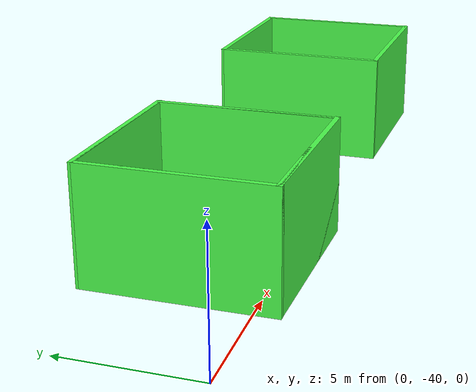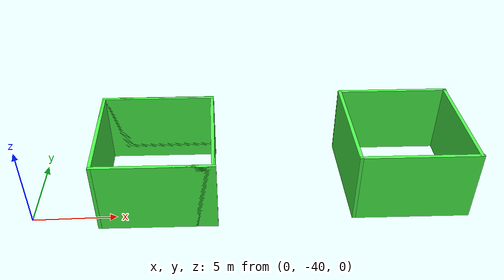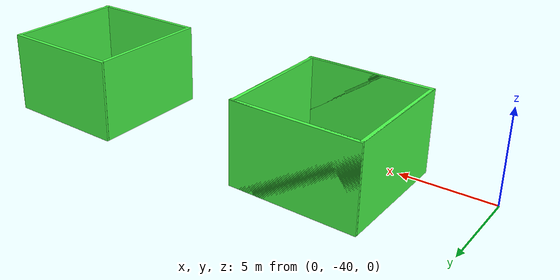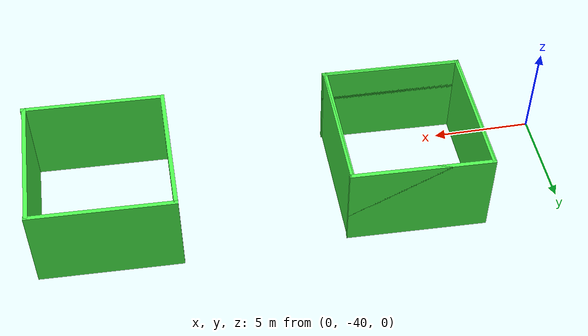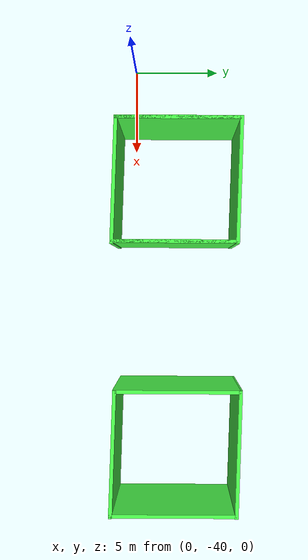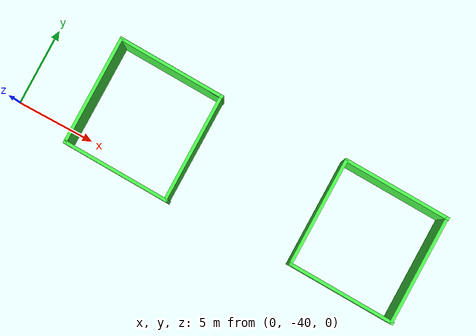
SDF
<sdf version="1.7">
 <world name="default">
  <model name="wall_clone_2">
   <pose>7.50002 -37.5 2.25 0 -0 0</pose>
   <frame name="closed_green_wall::__model__" attached_to="closed_green_wall::link_0">
    <pose relative_to="__model__">0 0 0 0 -0 0</pose>
   </frame>
   <link name="closed_green_wall::link_0">
    <inertial>
     <mass>1</mass>
     <inertia>
      <ixx>0.166667</ixx>
      <ixy>0</ixy>
      <ixz>0</ixz>
      <iyy>0.166667</iyy>
      <iyz>0</iyz>
      <izz>0.166667</izz>
     </inertia>
    </inertial>
    <pose relative_to="closed_green_wall::__model__">3.37098 -0.107634 -0 0 -0 0</pose>
    <visual name="visual">
     <geometry><box><size>0.2 7 4.5</size></box></geometry>
     <material>
      <lighting>1</lighting>
      <script><uri>file://media/materials/scripts/gazebo.material</uri><name>Gazebo/Grey</name></script>
      <shader type="vertex"><normal_map>__default__</normal_map></shader>
      <ambient>0.3 1 0.3 1</ambient>
      <diffuse>0.7 0.7 0.7 1</diffuse>
      <specular>0.01 0.01 0.01 1</specular>
      <emissive>0 0 0 1</emissive>
     </material>
    </visual>
    <collision name="collision">
     <geometry><box><size>0.2 7 4.5</size></box></geometry>
     <surface>
      <friction>
       <ode><mu>1</mu><mu2>1</mu2><fdir1>0 0 0</fdir1><slip1>0</slip1><slip2>0</slip2></ode>
       <torsional>
        <coefficient>1</coefficient>
        <patch_radius>0</patch_radius>
        <surface_radius>0</surface_radius>
        <use_patch_radius>1</use_patch_radius>
        <ode><slip>0</slip></ode>
       </torsional>
      </friction>
      <bounce><restitution_coefficient>0</restitution_coefficient><threshold>1e+06</threshold></bounce>
      <contact>
       <collide_without_contact>0</collide_without_contact>
       <collide_without_contact_bitmask>1</collide_without_contact_bitmask>
       <collide_bitmask>1</collide_bitmask>
       <ode>
        <soft_cfm>0</soft_cfm>
        <soft_erp>0.2</soft_erp>
        <kp>1e+13</kp>
        <kd>1</kd>
        <max_vel>0.01</max_vel>
        <min_depth>0</min_depth>
       </ode>
       <bullet>
        <split_impulse>1</split_impulse>
        <split_impulse_penetration_threshold>-0.01</split_impulse_penetration_threshold>
        <soft_cfm>0</soft_cfm>
        <soft_erp>0.2</soft_erp>
        <kp>1e+13</kp>
        <kd>1</kd>
       </bullet>
      </contact>
     </surface>
    </collision>
   </link>
   <link name="closed_green_wall::link_0_clone">
    <inertial>
     <mass>1</mass>
     <inertia>
      <ixx>0.166667</ixx>
      <ixy>0</ixy>
      <ixz>0</ixz>
      <iyy>0.166667</iyy>
      <iyz>0</iyz>
      <izz>0.166667</izz>
     </inertia>
    </inertial>
    <pose relative_to="closed_green_wall::__model__">0.024232 -3.42805 -0 0 0 -1.59986</pose>
    <visual name="visual">
     <geometry><box><size>0.2 7 4.5</size></box></geometry>
     <material>
      <lighting>1</lighting>
      <script><uri>file://media/materials/scripts/gazebo.material</uri><name>Gazebo/Grey</name></script>
      <shader type="vertex"><normal_map>__default__</normal_map></shader>
      <ambient>0.3 1 0.3 1</ambient>
      <diffuse>0.7 0.7 0.7 1</diffuse>
      <specular>0.01 0.01 0.01 1</specular>
      <emissive>0 0 0 1</emissive>
     </material>
    </visual>
    <collision name="collision">
     <geometry><box><size>0.2 7 4.5</size></box></geometry>
     <surface>
      <friction>
       <ode><mu>1</mu><mu2>1</mu2><fdir1>0 0 0</fdir1><slip1>0</slip1><slip2>0</slip2></ode>
       <torsional>
        <coefficient>1</coefficient>
        <patch_radius>0</patch_radius>
        <surface_radius>0</surface_radius>
        <use_patch_radius>1</use_patch_radius>
        <ode><slip>0</slip></ode>
       </torsional>
      </friction>
      <bounce><restitution_coefficient>0</restitution_coefficient><threshold>1e+06</threshold></bounce>
      <contact>
       <collide_without_contact>0</collide_without_contact>
       <collide_without_contact_bitmask>1</collide_without_contact_bitmask>
       <collide_bitmask>1</collide_bitmask>
       <ode>
        <soft_cfm>0</soft_cfm>
        <soft_erp>0.2</soft_erp>
        <kp>1e+13</kp>
        <kd>1</kd>
        <max_vel>0.01</max_vel>
        <min_depth>0</min_depth>
       </ode>
       <bullet>
        <split_impulse>1</split_impulse>
        <split_impulse_penetration_threshold>-0.01</split_impulse_penetration_threshold>
        <soft_cfm>0</soft_cfm>
        <soft_erp>0.2</soft_erp>
        <kp>1e+13</kp>
        <kd>1</kd>
       </bullet>
      </contact>
     </surface>
    </collision>
   </link>
   <link name="closed_green_wall::link_0_clone_0">
    <inertial>
     <mass>1</mass>
     <inertia>
      <ixx>0.166667</ixx>
      <ixy>0</ixy>
      <ixz>0</ixz>
      <iyy>0.166667</iyy>
      <iyz>0</iyz>
      <izz>0.166667</izz>
     </inertia>
    </inertial>
    <pose relative_to="closed_green_wall::__model__">-3.40001 0.065208 -0 0 -0 0</pose>
    <visual name="visual">
     <geometry><box><size>0.2 7 4.5</size></box></geometry>
     <material>
      <lighting>1</lighting>
      <script><uri>file://media/materials/scripts/gazebo.material</uri><name>Gazebo/Grey</name></script>
      <shader type="vertex"><normal_map>__default__</normal_map></shader>
      <ambient>0.3 1 0.3 1</ambient>
      <diffuse>0.7 0.7 0.7 1</diffuse>
      <specular>0.01 0.01 0.01 1</specular>
      <emissive>0 0 0 1</emissive>
     </material>
    </visual>
    <collision name="collision">
     <geometry><box><size>0.2 7 4.5</size></box></geometry>
     <surface>
      <friction>
       <ode><mu>1</mu><mu2>1</mu2><fdir1>0 0 0</fdir1><slip1>0</slip1><slip2>0</slip2></ode>
       <torsional>
        <coefficient>1</coefficient>
        <patch_radius>0</patch_radius>
        <surface_radius>0</surface_radius>
        <use_patch_radius>1</use_patch_radius>
        <ode><slip>0</slip></ode>
       </torsional>
      </friction>
      <bounce><restitution_coefficient>0</restitution_coefficient><threshold>1e+06</threshold></bounce>
      <contact>
       <collide_without_contact>0</collide_without_contact>
       <collide_without_contact_bitmask>1</collide_without_contact_bitmask>
       <collide_bitmask>1</collide_bitmask>
       <ode>
        <soft_cfm>0</soft_cfm>
        <soft_erp>0.2</soft_erp>
        <kp>1e+13</kp>
        <kd>1</kd>
        <max_vel>0.01</max_vel>
        <min_depth>0</min_depth>
       </ode>
       <bullet>
        <split_impulse>1</split_impulse>
        <split_impulse_penetration_threshold>-0.01</split_impulse_penetration_threshold>
        <soft_cfm>0</soft_cfm>
        <soft_erp>0.2</soft_erp>
        <kp>1e+13</kp>
        <kd>1</kd>
       </bullet>
      </contact>
     </surface>
    </collision>
   </link>
   <link name="closed_green_wall::link_0_clone_clone">
    <inertial>
     <mass>1</mass>
     <inertia>
      <ixx>0.166667</ixx>
      <ixy>0</ixy>
      <ixz>0</ixz>
      <iyy>0.166667</iyy>
      <iyz>0</iyz>
      <izz>0.166667</izz>
     </inertia>
    </inertial>
    <pose relative_to="closed_green_wall::__model__">0.004806 3.47046 -0 0 0 -1.59986</pose>
    <visual name="visual">
     <geometry><box><size>0.2 7 4.5</size></box></geometry>
     <material>
      <lighting>1</lighting>
      <script><uri>file://media/materials/scripts/gazebo.material</uri><name>Gazebo/Grey</name></script>
      <shader type="vertex"><normal_map>__default__</normal_map></shader>
      <ambient>0.3 1 0.3 1</ambient>
      <diffuse>0.7 0.7 0.7 1</diffuse>
      <specular>0.01 0.01 0.01 1</specular>
      <emissive>0 0 0 1</emissive>
     </material>
    </visual>
    <collision name="collision">
     <geometry><box><size>0.2 7 4.5</size></box></geometry>
     <surface>
      <friction>
       <ode><mu>1</mu><mu2>1</mu2><fdir1>0 0 0</fdir1><slip1>0</slip1><slip2>0</slip2></ode>
       <torsional>
        <coefficient>1</coefficient>
        <patch_radius>0</patch_radius>
        <surface_radius>0</surface_radius>
        <use_patch_radius>1</use_patch_radius>
        <ode><slip>0</slip></ode>
       </torsional>
      </friction>
      <bounce><restitution_coefficient>0</restitution_coefficient><threshold>1e+06</threshold></bounce>
      <contact>
       <collide_without_contact>0</collide_without_contact>
       <collide_without_contact_bitmask>1</collide_without_contact_bitmask>
       <collide_bitmask>1</collide_bitmask>
       <ode>
        <soft_cfm>0</soft_cfm>
        <soft_erp>0.2</soft_erp>
        <kp>1e+13</kp>
        <kd>1</kd>
        <max_vel>0.01</max_vel>
        <min_depth>0</min_depth>
       </ode>
       <bullet>
        <split_impulse>1</split_impulse>
        <split_impulse_penetration_threshold>-0.01</split_impulse_penetration_threshold>
        <soft_cfm>0</soft_cfm>
        <soft_erp>0.2</soft_erp>
        <kp>1e+13</kp>
        <kd>1</kd>
       </bullet>
      </contact>
     </surface>
    </collision>
   </link>
   <joint name="closed_green_wall::link_0_JOINT_1" type="fixed">
    <parent>closed_green_wall::link_0</parent>
    <child>closed_green_wall::link_0_clone_clone</child>
    <physics>
     <ode><limit><cfm>0</cfm><erp>0.2</erp></limit><suspension><cfm>0</cfm><erp>0.2</erp></suspension></ode>
    </physics>
   </joint>
   <joint name="closed_green_wall::link_0_clone_0_JOINT_3" type="fixed">
    <parent>closed_green_wall::link_0_clone_0</parent>
    <child>closed_green_wall::link_0_clone</child>
    <physics>
     <ode><limit><cfm>0</cfm><erp>0.2</erp></limit><suspension><cfm>0</cfm><erp>0.2</erp></suspension></ode>
    </physics>
   </joint>
   <joint name="closed_green_wall::link_0_clone_JOINT_0" type="fixed">
    <parent>closed_green_wall::link_0_clone</parent>
    <child>closed_green_wall::link_0</child>
    <physics>
     <ode><limit><cfm>0</cfm><erp>0.2</erp></limit><suspension><cfm>0</cfm><erp>0.2</erp></suspension></ode>
    </physics>
   </joint>
   <joint name="closed_green_wall::link_0_clone_clone_JOINT_2" type="fixed">
    <parent>closed_green_wall::link_0_clone_clone</parent>
    <child>closed_green_wall::link_0_clone_0</child>
    <physics>
     <ode><limit><cfm>0</cfm><erp>0.2</erp></limit><suspension><cfm>0</cfm><erp>0.2</erp></suspension></ode>
    </physics>
   </joint>
   <static>1</static>
  </model>
  <model name="wall_clone_3">
   <pose>22.5 -37.5 2.25 0 -0 0</pose>
   <frame name="closed_green_wall::__model__" attached_to="closed_green_wall::link_0">
    <pose relative_to="__model__">0 0 0 0 -0 0</pose>
   </frame>
   <link name="closed_green_wall::link_0">
    <inertial>
     <mass>1</mass>
     <inertia>
      <ixx>0.166667</ixx>
      <ixy>0</ixy>
      <ixz>0</ixz>
      <iyy>0.166667</iyy>
      <iyz>0</iyz>
      <izz>0.166667</izz>
     </inertia>
    </inertial>
    <pose relative_to="closed_green_wall::__model__">3.37098 -0.107634 -0 0 -0 0</pose>
    <visual name="visual">
     <geometry><box><size>0.2 7 4.5</size></box></geometry>
     <material>
      <lighting>1</lighting>
      <script><uri>file://media/materials/scripts/gazebo.material</uri><name>Gazebo/Grey</name></script>
      <shader type="vertex"><normal_map>__default__</normal_map></shader>
      <ambient>0.3 1 0.3 1</ambient>
      <diffuse>0.7 0.7 0.7 1</diffuse>
      <specular>0.01 0.01 0.01 1</specular>
      <emissive>0 0 0 1</emissive>
     </material>
    </visual>
    <collision name="collision">
     <geometry><box><size>0.2 7 4.5</size></box></geometry>
     <surface>
      <friction>
       <ode><mu>1</mu><mu2>1</mu2><fdir1>0 0 0</fdir1><slip1>0</slip1><slip2>0</slip2></ode>
       <torsional>
        <coefficient>1</coefficient>
        <patch_radius>0</patch_radius>
        <surface_radius>0</surface_radius>
        <use_patch_radius>1</use_patch_radius>
        <ode><slip>0</slip></ode>
       </torsional>
      </friction>
      <bounce><restitution_coefficient>0</restitution_coefficient><threshold>1e+06</threshold></bounce>
      <contact>
       <collide_without_contact>0</collide_without_contact>
       <collide_without_contact_bitmask>1</collide_without_contact_bitmask>
       <collide_bitmask>1</collide_bitmask>
       <ode>
        <soft_cfm>0</soft_cfm>
        <soft_erp>0.2</soft_erp>
        <kp>1e+13</kp>
        <kd>1</kd>
        <max_vel>0.01</max_vel>
        <min_depth>0</min_depth>
       </ode>
       <bullet>
        <split_impulse>1</split_impulse>
        <split_impulse_penetration_threshold>-0.01</split_impulse_penetration_threshold>
        <soft_cfm>0</soft_cfm>
        <soft_erp>0.2</soft_erp>
        <kp>1e+13</kp>
        <kd>1</kd>
       </bullet>
      </contact>
     </surface>
    </collision>
   </link>
   <link name="closed_green_wall::link_0_clone">
    <inertial>
     <mass>1</mass>
     <inertia>
      <ixx>0.166667</ixx>
      <ixy>0</ixy>
      <ixz>0</ixz>
      <iyy>0.166667</iyy>
      <iyz>0</iyz>
      <izz>0.166667</izz>
     </inertia>
    </inertial>
    <pose relative_to="closed_green_wall::__model__">0.024232 -3.42805 -0 0 0 -1.59986</pose>
    <visual name="visual">
     <geometry><box><size>0.2 7 4.5</size></box></geometry>
     <material>
      <lighting>1</lighting>
      <script><uri>file://media/materials/scripts/gazebo.material</uri><name>Gazebo/Grey</name></script>
      <shader type="vertex"><normal_map>__default__</normal_map></shader>
      <ambient>0.3 1 0.3 1</ambient>
      <diffuse>0.7 0.7 0.7 1</diffuse>
      <specular>0.01 0.01 0.01 1</specular>
      <emissive>0 0 0 1</emissive>
     </material>
    </visual>
    <collision name="collision">
     <geometry><box><size>0.2 7 4.5</size></box></geometry>
     <surface>
      <friction>
       <ode><mu>1</mu><mu2>1</mu2><fdir1>0 0 0</fdir1><slip1>0</slip1><slip2>0</slip2></ode>
       <torsional>
        <coefficient>1</coefficient>
        <patch_radius>0</patch_radius>
        <surface_radius>0</surface_radius>
        <use_patch_radius>1</use_patch_radius>
        <ode><slip>0</slip></ode>
       </torsional>
      </friction>
      <bounce><restitution_coefficient>0</restitution_coefficient><threshold>1e+06</threshold></bounce>
      <contact>
       <collide_without_contact>0</collide_without_contact>
       <collide_without_contact_bitmask>1</collide_without_contact_bitmask>
       <collide_bitmask>1</collide_bitmask>
       <ode>
        <soft_cfm>0</soft_cfm>
        <soft_erp>0.2</soft_erp>
        <kp>1e+13</kp>
        <kd>1</kd>
        <max_vel>0.01</max_vel>
        <min_depth>0</min_depth>
       </ode>
       <bullet>
        <split_impulse>1</split_impulse>
        <split_impulse_penetration_threshold>-0.01</split_impulse_penetration_threshold>
        <soft_cfm>0</soft_cfm>
        <soft_erp>0.2</soft_erp>
        <kp>1e+13</kp>
        <kd>1</kd>
       </bullet>
      </contact>
     </surface>
    </collision>
   </link>
   <link name="closed_green_wall::link_0_clone_0">
    <inertial>
     <mass>1</mass>
     <inertia>
      <ixx>0.166667</ixx>
      <ixy>0</ixy>
      <ixz>0</ixz>
      <iyy>0.166667</iyy>
      <iyz>0</iyz>
      <izz>0.166667</izz>
     </inertia>
    </inertial>
    <pose relative_to="closed_green_wall::__model__">-3.40001 0.065208 -0 0 -0 0</pose>
    <visual name="visual">
     <geometry><box><size>0.2 7 4.5</size></box></geometry>
     <material>
      <lighting>1</lighting>
      <script><uri>file://media/materials/scripts/gazebo.material</uri><name>Gazebo/Grey</name></script>
      <shader type="vertex"><normal_map>__default__</normal_map></shader>
      <ambient>0.3 1 0.3 1</ambient>
      <diffuse>0.7 0.7 0.7 1</diffuse>
      <specular>0.01 0.01 0.01 1</specular>
      <emissive>0 0 0 1</emissive>
     </material>
    </visual>
    <collision name="collision">
     <geometry><box><size>0.2 7 4.5</size></box></geometry>
     <surface>
      <friction>
       <ode><mu>1</mu><mu2>1</mu2><fdir1>0 0 0</fdir1><slip1>0</slip1><slip2>0</slip2></ode>
       <torsional>
        <coefficient>1</coefficient>
        <patch_radius>0</patch_radius>
        <surface_radius>0</surface_radius>
        <use_patch_radius>1</use_patch_radius>
        <ode><slip>0</slip></ode>
       </torsional>
      </friction>
      <bounce><restitution_coefficient>0</restitution_coefficient><threshold>1e+06</threshold></bounce>
      <contact>
       <collide_without_contact>0</collide_without_contact>
       <collide_without_contact_bitmask>1</collide_without_contact_bitmask>
       <collide_bitmask>1</collide_bitmask>
       <ode>
        <soft_cfm>0</soft_cfm>
        <soft_erp>0.2</soft_erp>
        <kp>1e+13</kp>
        <kd>1</kd>
        <max_vel>0.01</max_vel>
        <min_depth>0</min_depth>
       </ode>
       <bullet>
        <split_impulse>1</split_impulse>
        <split_impulse_penetration_threshold>-0.01</split_impulse_penetration_threshold>
        <soft_cfm>0</soft_cfm>
        <soft_erp>0.2</soft_erp>
        <kp>1e+13</kp>
        <kd>1</kd>
       </bullet>
      </contact>
     </surface>
    </collision>
   </link>
   <link name="closed_green_wall::link_0_clone_clone">
    <inertial>
     <mass>1</mass>
     <inertia>
      <ixx>0.166667</ixx>
      <ixy>0</ixy>
      <ixz>0</ixz>
      <iyy>0.166667</iyy>
      <iyz>0</iyz>
      <izz>0.166667</izz>
     </inertia>
    </inertial>
    <pose relative_to="closed_green_wall::__model__">0.004806 3.47046 -0 0 0 -1.59986</pose>
    <visual name="visual">
     <geometry><box><size>0.2 7 4.5</size></box></geometry>
     <material>
      <lighting>1</lighting>
      <script><uri>file://media/materials/scripts/gazebo.material</uri><name>Gazebo/Grey</name></script>
      <shader type="vertex"><normal_map>__default__</normal_map></shader>
      <ambient>0.3 1 0.3 1</ambient>
      <diffuse>0.7 0.7 0.7 1</diffuse>
      <specular>0.01 0.01 0.01 1</specular>
      <emissive>0 0 0 1</emissive>
     </material>
    </visual>
    <collision name="collision">
     <geometry><box><size>0.2 7 4.5</size></box></geometry>
     <surface>
      <friction>
       <ode><mu>1</mu><mu2>1</mu2><fdir1>0 0 0</fdir1><slip1>0</slip1><slip2>0</slip2></ode>
       <torsional>
        <coefficient>1</coefficient>
        <patch_radius>0</patch_radius>
        <surface_radius>0</surface_radius>
        <use_patch_radius>1</use_patch_radius>
        <ode><slip>0</slip></ode>
       </torsional>
      </friction>
      <bounce><restitution_coefficient>0</restitution_coefficient><threshold>1e+06</threshold></bounce>
      <contact>
       <collide_without_contact>0</collide_without_contact>
       <collide_without_contact_bitmask>1</collide_without_contact_bitmask>
       <collide_bitmask>1</collide_bitmask>
       <ode>
        <soft_cfm>0</soft_cfm>
        <soft_erp>0.2</soft_erp>
        <kp>1e+13</kp>
        <kd>1</kd>
        <max_vel>0.01</max_vel>
        <min_depth>0</min_depth>
       </ode>
       <bullet>
        <split_impulse>1</split_impulse>
        <split_impulse_penetration_threshold>-0.01</split_impulse_penetration_threshold>
        <soft_cfm>0</soft_cfm>
        <soft_erp>0.2</soft_erp>
        <kp>1e+13</kp>
        <kd>1</kd>
       </bullet>
      </contact>
     </surface>
    </collision>
   </link>
   <joint name="closed_green_wall::link_0_JOINT_1" type="fixed">
    <parent>closed_green_wall::link_0</parent>
    <child>closed_green_wall::link_0_clone_clone</child>
    <physics>
     <ode><limit><cfm>0</cfm><erp>0.2</erp></limit><suspension><cfm>0</cfm><erp>0.2</erp></suspension></ode>
    </physics>
   </joint>
   <joint name="closed_green_wall::link_0_clone_0_JOINT_3" type="fixed">
    <parent>closed_green_wall::link_0_clone_0</parent>
    <child>closed_green_wall::link_0_clone</child>
    <physics>
     <ode><limit><cfm>0</cfm><erp>0.2</erp></limit><suspension><cfm>0</cfm><erp>0.2</erp></suspension></ode>
    </physics>
   </joint>
   <joint name="closed_green_wall::link_0_clone_JOINT_0" type="fixed">
    <parent>closed_green_wall::link_0_clone</parent>
    <child>closed_green_wall::link_0</child>
    <physics>
     <ode><limit><cfm>0</cfm><erp>0.2</erp></limit><suspension><cfm>0</cfm><erp>0.2</erp></suspension></ode>
    </physics>
   </joint>
   <joint name="closed_green_wall::link_0_clone_clone_JOINT_2" type="fixed">
    <parent>closed_green_wall::link_0_clone_clone</parent>
    <child>closed_green_wall::link_0_clone_0</child>
    <physics>
     <ode><limit><cfm>0</cfm><erp>0.2</erp></limit><suspension><cfm>0</cfm><erp>0.2</erp></suspension></ode>
    </physics>
   </joint>
   <static>1</static>
  </model>
  <model name="wall_clone_2_0">
   <pose>7.5 -37.5 2.25 0 -0 0</pose>
   <frame name="closed_green_wall::__model__" attached_to="closed_green_wall::link_0">
    <pose relative_to="__model__">0 0 0 0 -0 0</pose>
   </frame>
   <link name="closed_green_wall::link_0">
    <inertial>
     <mass>1</mass>
     <inertia>
      <ixx>0.166667</ixx>
      <ixy>0</ixy>
      <ixz>0</ixz>
      <iyy>0.166667</iyy>
      <iyz>0</iyz>
      <izz>0.166667</izz>
     </inertia>
    </inertial>
    <pose relative_to="closed_green_wall::__model__">3.37098 -0.107634 -0 0 -0 0</pose>
    <visual name="visual">
     <geometry><box><size>0.2 7 4.5</size></box></geometry>
     <material>
      <lighting>1</lighting>
      <script><uri>file://media/materials/scripts/gazebo.material</uri><name>Gazebo/Grey</name></script>
      <shader type="vertex"><normal_map>__default__</normal_map></shader>
      <ambient>0.3 1 0.3 1</ambient>
      <diffuse>0.7 0.7 0.7 1</diffuse>
      <specular>0.01 0.01 0.01 1</specular>
      <emissive>0 0 0 1</emissive>
     </material>
    </visual>
    <collision name="collision">
     <geometry><box><size>0.2 7 4.5</size></box></geometry>
     <surface>
      <friction>
       <ode><mu>1</mu><mu2>1</mu2><fdir1>0 0 0</fdir1><slip1>0</slip1><slip2>0</slip2></ode>
       <torsional>
        <coefficient>1</coefficient>
        <patch_radius>0</patch_radius>
        <surface_radius>0</surface_radius>
        <use_patch_radius>1</use_patch_radius>
        <ode><slip>0</slip></ode>
       </torsional>
      </friction>
      <bounce><restitution_coefficient>0</restitution_coefficient><threshold>1e+06</threshold></bounce>
      <contact>
       <collide_without_contact>0</collide_without_contact>
       <collide_without_contact_bitmask>1</collide_without_contact_bitmask>
       <collide_bitmask>1</collide_bitmask>
       <ode>
        <soft_cfm>0</soft_cfm>
        <soft_erp>0.2</soft_erp>
        <kp>1e+13</kp>
        <kd>1</kd>
        <max_vel>0.01</max_vel>
        <min_depth>0</min_depth>
       </ode>
       <bullet>
        <split_impulse>1</split_impulse>
        <split_impulse_penetration_threshold>-0.01</split_impulse_penetration_threshold>
        <soft_cfm>0</soft_cfm>
        <soft_erp>0.2</soft_erp>
        <kp>1e+13</kp>
        <kd>1</kd>
       </bullet>
      </contact>
     </surface>
    </collision>
   </link>
   <link name="closed_green_wall::link_0_clone">
    <inertial>
     <mass>1</mass>
     <inertia>
      <ixx>0.166667</ixx>
      <ixy>0</ixy>
      <ixz>0</ixz>
      <iyy>0.166667</iyy>
      <iyz>0</iyz>
      <izz>0.166667</izz>
     </inertia>
    </inertial>
    <pose relative_to="closed_green_wall::__model__">0.024232 -3.42805 -0 0 0 -1.59986</pose>
    <visual name="visual">
     <geometry><box><size>0.2 7 4.5</size></box></geometry>
     <material>
      <lighting>1</lighting>
      <script><uri>file://media/materials/scripts/gazebo.material</uri><name>Gazebo/Grey</name></script>
      <shader type="vertex"><normal_map>__default__</normal_map></shader>
      <ambient>0.3 1 0.3 1</ambient>
      <diffuse>0.7 0.7 0.7 1</diffuse>
      <specular>0.01 0.01 0.01 1</specular>
      <emissive>0 0 0 1</emissive>
     </material>
    </visual>
    <collision name="collision">
     <geometry><box><size>0.2 7 4.5</size></box></geometry>
     <surface>
      <friction>
       <ode><mu>1</mu><mu2>1</mu2><fdir1>0 0 0</fdir1><slip1>0</slip1><slip2>0</slip2></ode>
       <torsional>
        <coefficient>1</coefficient>
        <patch_radius>0</patch_radius>
        <surface_radius>0</surface_radius>
        <use_patch_radius>1</use_patch_radius>
        <ode><slip>0</slip></ode>
       </torsional>
      </friction>
      <bounce><restitution_coefficient>0</restitution_coefficient><threshold>1e+06</threshold></bounce>
      <contact>
       <collide_without_contact>0</collide_without_contact>
       <collide_without_contact_bitmask>1</collide_without_contact_bitmask>
       <collide_bitmask>1</collide_bitmask>
       <ode>
        <soft_cfm>0</soft_cfm>
        <soft_erp>0.2</soft_erp>
        <kp>1e+13</kp>
        <kd>1</kd>
        <max_vel>0.01</max_vel>
        <min_depth>0</min_depth>
       </ode>
       <bullet>
        <split_impulse>1</split_impulse>
        <split_impulse_penetration_threshold>-0.01</split_impulse_penetration_threshold>
        <soft_cfm>0</soft_cfm>
        <soft_erp>0.2</soft_erp>
        <kp>1e+13</kp>
        <kd>1</kd>
       </bullet>
      </contact>
     </surface>
    </collision>
   </link>
   <link name="closed_green_wall::link_0_clone_0">
    <inertial>
     <mass>1</mass>
     <inertia>
      <ixx>0.166667</ixx>
      <ixy>0</ixy>
      <ixz>0</ixz>
      <iyy>0.166667</iyy>
      <iyz>0</iyz>
      <izz>0.166667</izz>
     </inertia>
    </inertial>
    <pose relative_to="closed_green_wall::__model__">-3.40001 0.065208 -0 0 -0 0</pose>
    <visual name="visual">
     <geometry><box><size>0.2 7 4.5</size></box></geometry>
     <material>
      <lighting>1</lighting>
      <script><uri>file://media/materials/scripts/gazebo.material</uri><name>Gazebo/Grey</name></script>
      <shader type="vertex"><normal_map>__default__</normal_map></shader>
      <ambient>0.3 1 0.3 1</ambient>
      <diffuse>0.7 0.7 0.7 1</diffuse>
      <specular>0.01 0.01 0.01 1</specular>
      <emissive>0 0 0 1</emissive>
     </material>
    </visual>
    <collision name="collision">
     <geometry><box><size>0.2 7 4.5</size></box></geometry>
     <surface>
      <friction>
       <ode><mu>1</mu><mu2>1</mu2><fdir1>0 0 0</fdir1><slip1>0</slip1><slip2>0</slip2></ode>
       <torsional>
        <coefficient>1</coefficient>
        <patch_radius>0</patch_radius>
        <surface_radius>0</surface_radius>
        <use_patch_radius>1</use_patch_radius>
        <ode><slip>0</slip></ode>
       </torsional>
      </friction>
      <bounce><restitution_coefficient>0</restitution_coefficient><threshold>1e+06</threshold></bounce>
      <contact>
       <collide_without_contact>0</collide_without_contact>
       <collide_without_contact_bitmask>1</collide_without_contact_bitmask>
       <collide_bitmask>1</collide_bitmask>
       <ode>
        <soft_cfm>0</soft_cfm>
        <soft_erp>0.2</soft_erp>
        <kp>1e+13</kp>
        <kd>1</kd>
        <max_vel>0.01</max_vel>
        <min_depth>0</min_depth>
       </ode>
       <bullet>
        <split_impulse>1</split_impulse>
        <split_impulse_penetration_threshold>-0.01</split_impulse_penetration_threshold>
        <soft_cfm>0</soft_cfm>
        <soft_erp>0.2</soft_erp>
        <kp>1e+13</kp>
        <kd>1</kd>
       </bullet>
      </contact>
     </surface>
    </collision>
   </link>
   <link name="closed_green_wall::link_0_clone_clone">
    <inertial>
     <mass>1</mass>
     <inertia>
      <ixx>0.166667</ixx>
      <ixy>0</ixy>
      <ixz>0</ixz>
      <iyy>0.166667</iyy>
      <iyz>0</iyz>
      <izz>0.166667</izz>
     </inertia>
    </inertial>
    <pose relative_to="closed_green_wall::__model__">0.004806 3.47046 -0 0 0 -1.59986</pose>
    <visual name="visual">
     <geometry><box><size>0.2 7 4.5</size></box></geometry>
     <material>
      <lighting>1</lighting>
      <script><uri>file://media/materials/scripts/gazebo.material</uri><name>Gazebo/Grey</name></script>
      <shader type="vertex"><normal_map>__default__</normal_map></shader>
      <ambient>0.3 1 0.3 1</ambient>
      <diffuse>0.7 0.7 0.7 1</diffuse>
      <specular>0.01 0.01 0.01 1</specular>
      <emissive>0 0 0 1</emissive>
     </material>
    </visual>
    <collision name="collision">
     <geometry><box><size>0.2 7 4.5</size></box></geometry>
     <surface>
      <friction>
       <ode><mu>1</mu><mu2>1</mu2><fdir1>0 0 0</fdir1><slip1>0</slip1><slip2>0</slip2></ode>
       <torsional>
        <coefficient>1</coefficient>
        <patch_radius>0</patch_radius>
        <surface_radius>0</surface_radius>
        <use_patch_radius>1</use_patch_radius>
        <ode><slip>0</slip></ode>
       </torsional>
      </friction>
      <bounce><restitution_coefficient>0</restitution_coefficient><threshold>1e+06</threshold></bounce>
      <contact>
       <collide_without_contact>0</collide_without_contact>
       <collide_without_contact_bitmask>1</collide_without_contact_bitmask>
       <collide_bitmask>1</collide_bitmask>
       <ode>
        <soft_cfm>0</soft_cfm>
        <soft_erp>0.2</soft_erp>
        <kp>1e+13</kp>
        <kd>1</kd>
        <max_vel>0.01</max_vel>
        <min_depth>0</min_depth>
       </ode>
       <bullet>
        <split_impulse>1</split_impulse>
        <split_impulse_penetration_threshold>-0.01</split_impulse_penetration_threshold>
        <soft_cfm>0</soft_cfm>
        <soft_erp>0.2</soft_erp>
        <kp>1e+13</kp>
        <kd>1</kd>
       </bullet>
      </contact>
     </surface>
    </collision>
   </link>
   <joint name="closed_green_wall::link_0_JOINT_1" type="fixed">
    <parent>closed_green_wall::link_0</parent>
    <child>closed_green_wall::link_0_clone_clone</child>
    <physics>
     <ode><limit><cfm>0</cfm><erp>0.2</erp></limit><suspension><cfm>0</cfm><erp>0.2</erp></suspension></ode>
    </physics>
   </joint>
   <joint name="closed_green_wall::link_0_clone_0_JOINT_3" type="fixed">
    <parent>closed_green_wall::link_0_clone_0</parent>
    <child>closed_green_wall::link_0_clone</child>
    <physics>
     <ode><limit><cfm>0</cfm><erp>0.2</erp></limit><suspension><cfm>0</cfm><erp>0.2</erp></suspension></ode>
    </physics>
   </joint>
   <joint name="closed_green_wall::link_0_clone_JOINT_0" type="fixed">
    <parent>closed_green_wall::link_0_clone</parent>
    <child>closed_green_wall::link_0</child>
    <physics>
     <ode><limit><cfm>0</cfm><erp>0.2</erp></limit><suspension><cfm>0</cfm><erp>0.2</erp></suspension></ode>
    </physics>
   </joint>
   <joint name="closed_green_wall::link_0_clone_clone_JOINT_2" type="fixed">
    <parent>closed_green_wall::link_0_clone_clone</parent>
    <child>closed_green_wall::link_0_clone_0</child>
    <physics>
     <ode><limit><cfm>0</cfm><erp>0.2</erp></limit><suspension><cfm>0</cfm><erp>0.2</erp></suspension></ode>
    </physics>
   </joint>
   <static>1</static>
  </model>
  <model name="wall_clone_3_0">
   <pose>22.5 -37.5 2.25 0 -0 0</pose>
   <frame name="closed_green_wall::__model__" attached_to="closed_green_wall::link_0">
    <pose relative_to="__model__">0 0 0 0 -0 0</pose>
   </frame>
   <link name="closed_green_wall::link_0">
    <inertial>
     <mass>1</mass>
     <inertia>
      <ixx>0.166667</ixx>
      <ixy>0</ixy>
      <ixz>0</ixz>
      <iyy>0.166667</iyy>
      <iyz>0</iyz>
      <izz>0.166667</izz>
     </inertia>
    </inertial>
    <pose relative_to="closed_green_wall::__model__">3.37098 -0.107634 -0 0 -0 0</pose>
    <visual name="visual">
     <geometry><box><size>0.2 7 4.5</size></box></geometry>
     <material>
      <lighting>1</lighting>
      <script><uri>file://media/materials/scripts/gazebo.material</uri><name>Gazebo/Grey</name></script>
      <shader type="vertex"><normal_map>__default__</normal_map></shader>
      <ambient>0.3 1 0.3 1</ambient>
      <diffuse>0.7 0.7 0.7 1</diffuse>
      <specular>0.01 0.01 0.01 1</specular>
      <emissive>0 0 0 1</emissive>
     </material>
    </visual>
    <collision name="collision">
     <geometry><box><size>0.2 7 4.5</size></box></geometry>
     <surface>
      <friction>
       <ode><mu>1</mu><mu2>1</mu2><fdir1>0 0 0</fdir1><slip1>0</slip1><slip2>0</slip2></ode>
       <torsional>
        <coefficient>1</coefficient>
        <patch_radius>0</patch_radius>
        <surface_radius>0</surface_radius>
        <use_patch_radius>1</use_patch_radius>
        <ode><slip>0</slip></ode>
       </torsional>
      </friction>
      <bounce><restitution_coefficient>0</restitution_coefficient><threshold>1e+06</threshold></bounce>
      <contact>
       <collide_without_contact>0</collide_without_contact>
       <collide_without_contact_bitmask>1</collide_without_contact_bitmask>
       <collide_bitmask>1</collide_bitmask>
       <ode>
        <soft_cfm>0</soft_cfm>
        <soft_erp>0.2</soft_erp>
        <kp>1e+13</kp>
        <kd>1</kd>
        <max_vel>0.01</max_vel>
        <min_depth>0</min_depth>
       </ode>
       <bullet>
        <split_impulse>1</split_impulse>
        <split_impulse_penetration_threshold>-0.01</split_impulse_penetration_threshold>
        <soft_cfm>0</soft_cfm>
        <soft_erp>0.2</soft_erp>
        <kp>1e+13</kp>
        <kd>1</kd>
       </bullet>
      </contact>
     </surface>
    </collision>
   </link>
   <link name="closed_green_wall::link_0_clone">
    <inertial>
     <mass>1</mass>
     <inertia>
      <ixx>0.166667</ixx>
      <ixy>0</ixy>
      <ixz>0</ixz>
      <iyy>0.166667</iyy>
      <iyz>0</iyz>
      <izz>0.166667</izz>
     </inertia>
    </inertial>
    <pose relative_to="closed_green_wall::__model__">0.024232 -3.42805 -0 0 0 -1.59986</pose>
    <visual name="visual">
     <geometry><box><size>0.2 7 4.5</size></box></geometry>
     <material>
      <lighting>1</lighting>
      <script><uri>file://media/materials/scripts/gazebo.material</uri><name>Gazebo/Grey</name></script>
      <shader type="vertex"><normal_map>__default__</normal_map></shader>
      <ambient>0.3 1 0.3 1</ambient>
      <diffuse>0.7 0.7 0.7 1</diffuse>
      <specular>0.01 0.01 0.01 1</specular>
      <emissive>0 0 0 1</emissive>
     </material>
    </visual>
    <collision name="collision">
     <geometry><box><size>0.2 7 4.5</size></box></geometry>
     <surface>
      <friction>
       <ode><mu>1</mu><mu2>1</mu2><fdir1>0 0 0</fdir1><slip1>0</slip1><slip2>0</slip2></ode>
       <torsional>
        <coefficient>1</coefficient>
        <patch_radius>0</patch_radius>
        <surface_radius>0</surface_radius>
        <use_patch_radius>1</use_patch_radius>
        <ode><slip>0</slip></ode>
       </torsional>
      </friction>
      <bounce><restitution_coefficient>0</restitution_coefficient><threshold>1e+06</threshold></bounce>
      <contact>
       <collide_without_contact>0</collide_without_contact>
       <collide_without_contact_bitmask>1</collide_without_contact_bitmask>
       <collide_bitmask>1</collide_bitmask>
       <ode>
        <soft_cfm>0</soft_cfm>
        <soft_erp>0.2</soft_erp>
        <kp>1e+13</kp>
        <kd>1</kd>
        <max_vel>0.01</max_vel>
        <min_depth>0</min_depth>
       </ode>
       <bullet>
        <split_impulse>1</split_impulse>
        <split_impulse_penetration_threshold>-0.01</split_impulse_penetration_threshold>
        <soft_cfm>0</soft_cfm>
        <soft_erp>0.2</soft_erp>
        <kp>1e+13</kp>
        <kd>1</kd>
       </bullet>
      </contact>
     </surface>
    </collision>
   </link>
   <link name="closed_green_wall::link_0_clone_0">
    <inertial>
     <mass>1</mass>
     <inertia>
      <ixx>0.166667</ixx>
      <ixy>0</ixy>
      <ixz>0</ixz>
      <iyy>0.166667</iyy>
      <iyz>0</iyz>
      <izz>0.166667</izz>
     </inertia>
    </inertial>
    <pose relative_to="closed_green_wall::__model__">-3.40001 0.065208 -0 0 -0 0</pose>
    <visual name="visual">
     <geometry><box><size>0.2 7 4.5</size></box></geometry>
     <material>
      <lighting>1</lighting>
      <script><uri>file://media/materials/scripts/gazebo.material</uri><name>Gazebo/Grey</name></script>
      <shader type="vertex"><normal_map>__default__</normal_map></shader>
      <ambient>0.3 1 0.3 1</ambient>
      <diffuse>0.7 0.7 0.7 1</diffuse>
      <specular>0.01 0.01 0.01 1</specular>
      <emissive>0 0 0 1</emissive>
     </material>
    </visual>
    <collision name="collision">
     <geometry><box><size>0.2 7 4.5</size></box></geometry>
     <surface>
      <friction>
       <ode><mu>1</mu><mu2>1</mu2><fdir1>0 0 0</fdir1><slip1>0</slip1><slip2>0</slip2></ode>
       <torsional>
        <coefficient>1</coefficient>
        <patch_radius>0</patch_radius>
        <surface_radius>0</surface_radius>
        <use_patch_radius>1</use_patch_radius>
        <ode><slip>0</slip></ode>
       </torsional>
      </friction>
      <bounce><restitution_coefficient>0</restitution_coefficient><threshold>1e+06</threshold></bounce>
      <contact>
       <collide_without_contact>0</collide_without_contact>
       <collide_without_contact_bitmask>1</collide_without_contact_bitmask>
       <collide_bitmask>1</collide_bitmask>
       <ode>
        <soft_cfm>0</soft_cfm>
        <soft_erp>0.2</soft_erp>
        <kp>1e+13</kp>
        <kd>1</kd>
        <max_vel>0.01</max_vel>
        <min_depth>0</min_depth>
       </ode>
       <bullet>
        <split_impulse>1</split_impulse>
        <split_impulse_penetration_threshold>-0.01</split_impulse_penetration_threshold>
        <soft_cfm>0</soft_cfm>
        <soft_erp>0.2</soft_erp>
        <kp>1e+13</kp>
        <kd>1</kd>
       </bullet>
      </contact>
     </surface>
    </collision>
   </link>
   <link name="closed_green_wall::link_0_clone_clone">
    <inertial>
     <mass>1</mass>
     <inertia>
      <ixx>0.166667</ixx>
      <ixy>0</ixy>
      <ixz>0</ixz>
      <iyy>0.166667</iyy>
      <iyz>0</iyz>
      <izz>0.166667</izz>
     </inertia>
    </inertial>
    <pose relative_to="closed_green_wall::__model__">0.004806 3.47046 -0 0 0 -1.59986</pose>
    <visual name="visual">
     <geometry><box><size>0.2 7 4.5</size></box></geometry>
     <material>
      <lighting>1</lighting>
      <script><uri>file://media/materials/scripts/gazebo.material</uri><name>Gazebo/Grey</name></script>
      <shader type="vertex"><normal_map>__default__</normal_map></shader>
      <ambient>0.3 1 0.3 1</ambient>
      <diffuse>0.7 0.7 0.7 1</diffuse>
      <specular>0.01 0.01 0.01 1</specular>
      <emissive>0 0 0 1</emissive>
     </material>
    </visual>
    <collision name="collision">
     <geometry><box><size>0.2 7 4.5</size></box></geometry>
     <surface>
      <friction>
       <ode><mu>1</mu><mu2>1</mu2><fdir1>0 0 0</fdir1><slip1>0</slip1><slip2>0</slip2></ode>
       <torsional>
        <coefficient>1</coefficient>
        <patch_radius>0</patch_radius>
        <surface_radius>0</surface_radius>
        <use_patch_radius>1</use_patch_radius>
        <ode><slip>0</slip></ode>
       </torsional>
      </friction>
      <bounce><restitution_coefficient>0</restitution_coefficient><threshold>1e+06</threshold></bounce>
      <contact>
       <collide_without_contact>0</collide_without_contact>
       <collide_without_contact_bitmask>1</collide_without_contact_bitmask>
       <collide_bitmask>1</collide_bitmask>
       <ode>
        <soft_cfm>0</soft_cfm>
        <soft_erp>0.2</soft_erp>
        <kp>1e+13</kp>
        <kd>1</kd>
        <max_vel>0.01</max_vel>
        <min_depth>0</min_depth>
       </ode>
       <bullet>
        <split_impulse>1</split_impulse>
        <split_impulse_penetration_threshold>-0.01</split_impulse_penetration_threshold>
        <soft_cfm>0</soft_cfm>
        <soft_erp>0.2</soft_erp>
        <kp>1e+13</kp>
        <kd>1</kd>
       </bullet>
      </contact>
     </surface>
    </collision>
   </link>
   <joint name="closed_green_wall::link_0_JOINT_1" type="fixed">
    <parent>closed_green_wall::link_0</parent>
    <child>closed_green_wall::link_0_clone_clone</child>
    <physics>
     <ode><limit><cfm>0</cfm><erp>0.2</erp></limit><suspension><cfm>0</cfm><erp>0.2</erp></suspension></ode>
    </physics>
   </joint>
   <joint name="closed_green_wall::link_0_clone_0_JOINT_3" type="fixed">
    <parent>closed_green_wall::link_0_clone_0</parent>
    <child>closed_green_wall::link_0_clone</child>
    <physics>
     <ode><limit><cfm>0</cfm><erp>0.2</erp></limit><suspension><cfm>0</cfm><erp>0.2</erp></suspension></ode>
    </physics>
   </joint>
   <joint name="closed_green_wall::link_0_clone_JOINT_0" type="fixed">
    <parent>closed_green_wall::link_0_clone</parent>
    <child>closed_green_wall::link_0</child>
    <physics>
     <ode><limit><cfm>0</cfm><erp>0.2</erp></limit><suspension><cfm>0</cfm><erp>0.2</erp></suspension></ode>
    </physics>
   </joint>
   <joint name="closed_green_wall::link_0_clone_clone_JOINT_2" type="fixed">
    <parent>closed_green_wall::link_0_clone_clone</parent>
    <child>closed_green_wall::link_0_clone_0</child>
    <physics>
     <ode><limit><cfm>0</cfm><erp>0.2</erp></limit><suspension><cfm>0</cfm><erp>0.2</erp></suspension></ode>
    </physics>
   </joint>
   <static>1</static>
  </model>
 </world>
</sdf>
